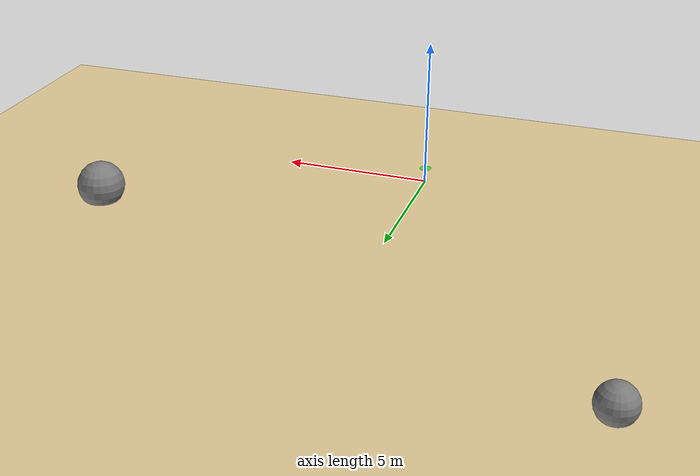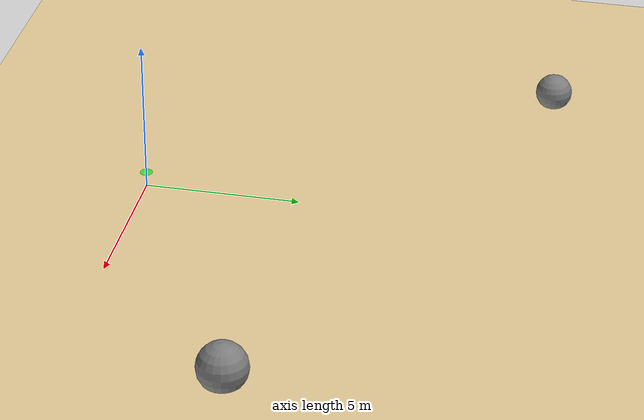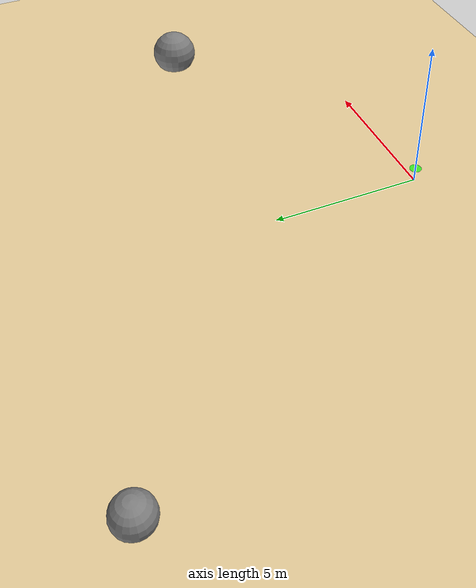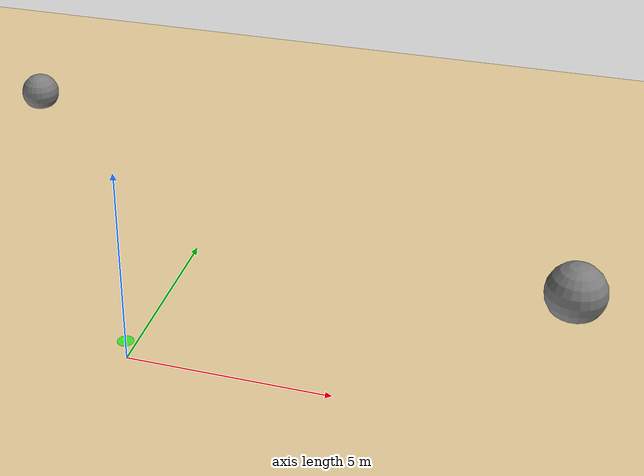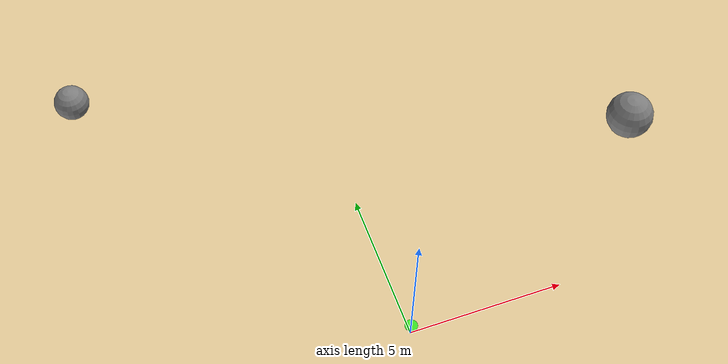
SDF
<?xml version="1.0" ?>
<sdf version="1.9">
  <world name="desert_terrain">

    <!-- Physics -->
    <physics name="1ms" type="dart">
      <max_step_size>0.001</max_step_size>
      <real_time_factor>1.0</real_time_factor>
      <real_time_update_rate>1000.0</real_time_update_rate>
    </physics>

    <!-- Required plugins (Fortress naming for ignition-fortress in Docker) -->
    <plugin
      filename="ignition-gazebo-physics-system"
      name="ignition::gazebo::systems::Physics">
    </plugin>
    <plugin
      filename="ignition-gazebo-sensors-system"
      name="ignition::gazebo::systems::Sensors">
      <render_engine>ogre2</render_engine>
    </plugin>
    <plugin
      filename="ignition-gazebo-scene-broadcaster-system"
      name="ignition::gazebo::systems::SceneBroadcaster">
    </plugin>
    <plugin
      filename="ignition-gazebo-user-commands-system"
      name="ignition::gazebo::systems::UserCommands">
    </plugin>
    <plugin
      filename="ignition-gazebo-imu-system"
      name="ignition::gazebo::systems::Imu">
    </plugin>
    <plugin
      filename="ignition-gazebo-navsat-system"
      name="ignition::gazebo::systems::NavSat">
    </plugin>

    <!-- Sun -->
    <light type="directional" name="sun">
      <cast_shadows>true</cast_shadows>
      <pose>0 0 100 0 0 0</pose>
      <diffuse>0.9 0.85 0.7 1</diffuse>
      <specular>0.3 0.3 0.25 1</specular>
      <attenuation>
        <range>1000</range>
        <constant>0.9</constant>
        <linear>0.01</linear>
        <quadratic>0.001</quadratic>
      </attenuation>
      <direction>-0.5 0.1 -0.9</direction>
    </light>

    <!-- Sky -->
    <scene>
      <ambient>0.4 0.4 0.4 1</ambient>
      <background>0.7 0.8 0.9 1</background>
      <sky>
        <clouds>
          <speed>0.4</speed>
        </clouds>
      </sky>
    </scene>

    <!-- Ground plane (fallback if heightmap fails) -->
    <model name="ground_plane">
      <static>true</static>
      <link name="link">
        <collision name="collision">
          <geometry>
            <plane>
              <normal>0 0 1</normal>
              <size>1000 1000</size>
            </plane>
          </geometry>
          <surface>
            <friction>
              <ode>
                <mu>0.6</mu>
                <mu2>0.5</mu2>
              </ode>
            </friction>
            <bounce>
              <restitution_coefficient>0.05</restitution_coefficient>
            </bounce>
          </surface>
        </collision>
        <visual name="visual">
          <geometry>
            <plane>
              <normal>0 0 1</normal>
              <size>1000 1000</size>
            </plane>
          </geometry>
          <material>
            <ambient>0.9 0.8 0.6 1</ambient>
            <diffuse>0.9 0.8 0.6 1</diffuse>
            <specular>0.1 0.1 0.1 1</specular>
          </material>
        </visual>
      </link>
    </model>

    <!-- Desert terrain heightmap - DISABLED: requires custom textures -->
    <!-- Uncomment and add models/desert_heightmap/ with textures to enable -->

    <!-- Some rocks for obstacles -->
    <model name="rock_1">
      <pose>10 5 0.5 0 0 0.5</pose>
      <static>true</static>
      <link name="link">
        <collision name="collision">
          <geometry>
            <sphere><radius>0.8</radius></sphere>
          </geometry>
        </collision>
        <visual name="visual">
          <geometry>
            <sphere><radius>0.8</radius></sphere>
          </geometry>
          <material>
            <ambient>0.4 0.4 0.4 1</ambient>
            <diffuse>0.5 0.5 0.5 1</diffuse>
          </material>
        </visual>
      </link>
    </model>

    <model name="rock_2">
      <pose>-8 12 0.4 0 0 1.2</pose>
      <static>true</static>
      <link name="link">
        <collision name="collision">
          <geometry>
            <sphere><radius>0.6</radius></sphere>
          </geometry>
        </collision>
        <visual name="visual">
          <geometry>
            <sphere><radius>0.6</radius></sphere>
          </geometry>
          <material>
            <ambient>0.4 0.4 0.4 1</ambient>
            <diffuse>0.5 0.5 0.5 1</diffuse>
          </material>
        </visual>
      </link>
    </model>

    <!-- Vehicle spawn marker -->
    <model name="spawn_point">
      <static>true</static>
      <pose>0 0 0.5 0 0 0</pose>
      <link name="link">
        <visual name="visual">
          <geometry>
            <cylinder>
              <radius>0.2</radius>
              <length>0.01</length>
            </cylinder>
          </geometry>
          <material>
            <ambient>0 1 0 0.7</ambient>
            <diffuse>0 1 0 0.7</diffuse>
          </material>
        </visual>
      </link>
    </model>

  </world>
</sdf>
